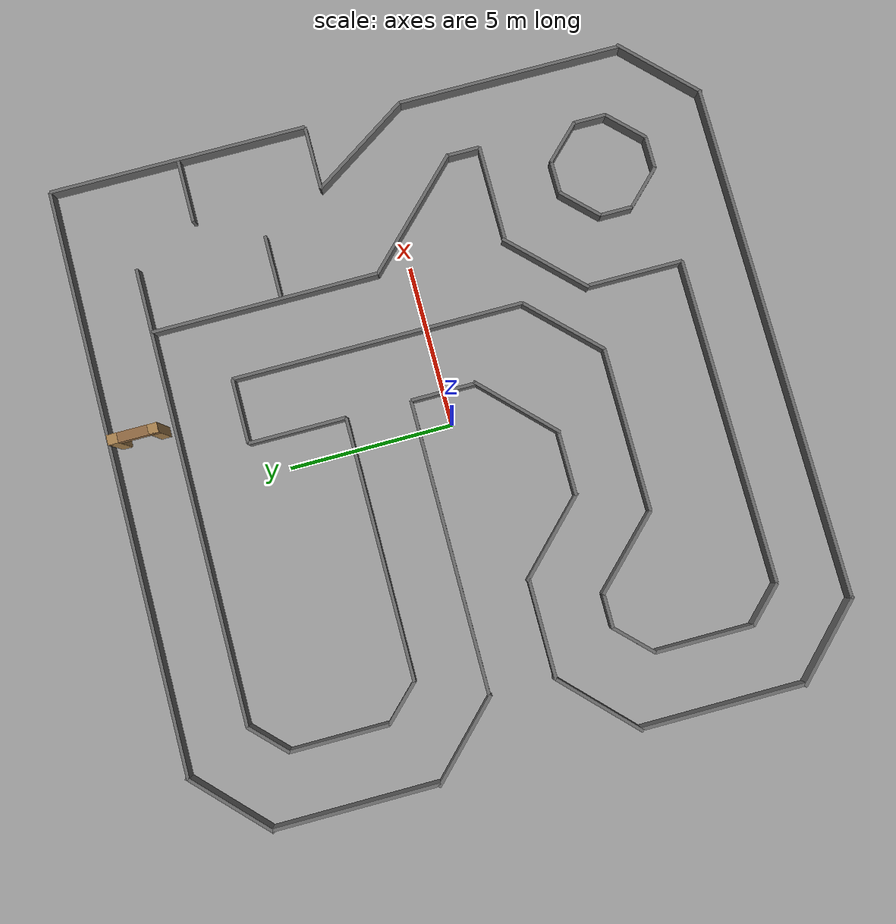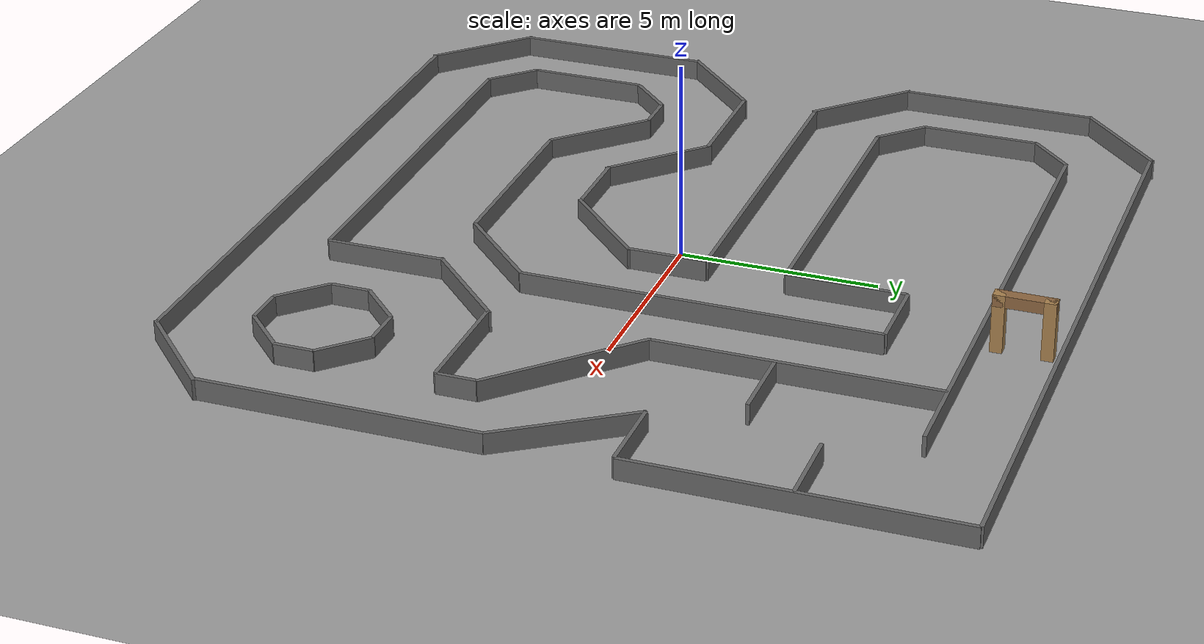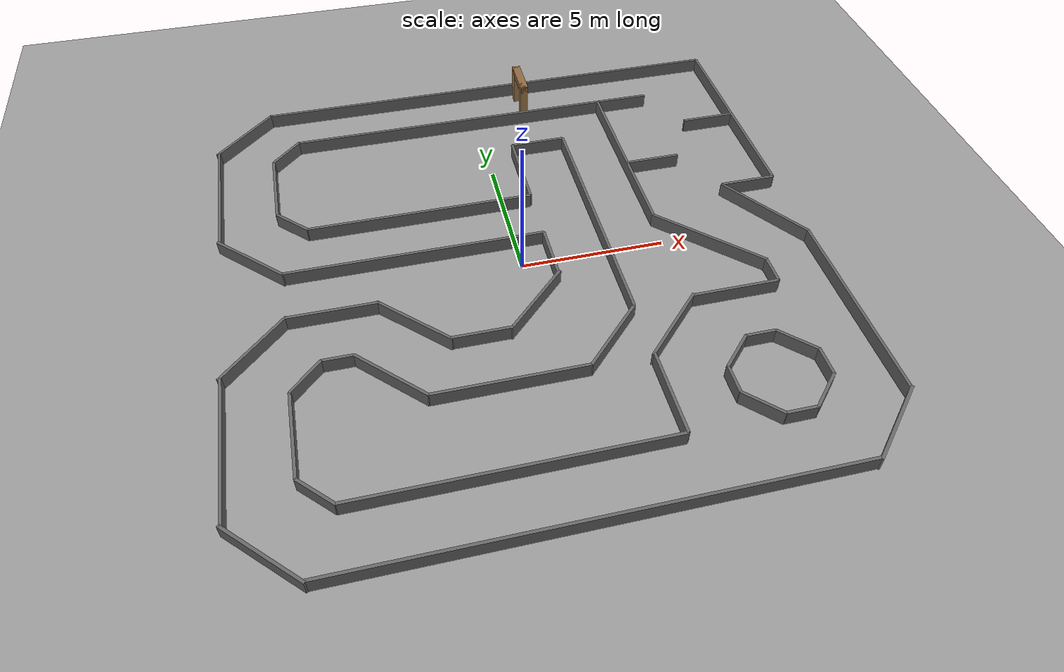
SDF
<sdf version='1.9'>
  <world name='default'>
    <plugin filename="gz-sim-physics-system" name="gz::sim::systems::Physics"/>
    <plugin filename="gz-sim-user-commands-system" name="gz::sim::systems::UserCommands"/>
    <plugin filename="gz-sim-scene-broadcaster-system" name="gz::sim::systems::SceneBroadcaster"/>
    <plugin filename="gz-sim-sensors-system" name="gz::sim::systems::Sensors"/>

    <light name='sun' type='directional'>
      <cast_shadows>1</cast_shadows>
      <pose>0 0 10 0 -0 0</pose>
      <diffuse>0.8 0.8 0.8 1</diffuse>
      <specular>0.2 0.2 0.2 1</specular>
      <attenuation>
        <range>1000</range>
        <constant>0.9</constant>
        <linear>0.01</linear>
        <quadratic>0.001</quadratic>
      </attenuation>
      <direction>-0.5 0.1 -0.9</direction>
    </light>

    <model name='ground_plane'>
      <static>1</static>
      <link name='link'>
        <collision name='collision'>
          <geometry>
            <plane>
              <normal>0 0 1</normal>
              <size>100 100</size>
            </plane>
          </geometry>
          <surface>
            <friction>
              <ode>
                <mu>100000</mu>
                <mu2>100000</mu2>
              </ode>
            </friction>
            <bounce/>
            <contact>
              <ode/>
            </contact>
          </surface>
          <max_contacts>10</max_contacts>
        </collision>
        <visual name='visual'>
          <cast_shadows>0</cast_shadows>
          <geometry>
            <plane>
              <normal>0 0 1</normal>
              <size>100 100</size>
            </plane>
          </geometry>
          <material>
            <ambient>0.6 0.6 0.6 1</ambient>
            <diffuse>0.6 0.6 0.6 1</diffuse>
          </material>
        </visual>
        <self_collide>0</self_collide>
        <kinematic>0</kinematic>
        <gravity>1</gravity>
      </link>
    </model>

    <physics type='ode'>
      <max_step_size>0.01</max_step_size>
      <real_time_factor>1</real_time_factor>
      <real_time_update_rate>100</real_time_update_rate>
      <gravity>0 0 -9.8</gravity>
    </physics>

    <scene>
      <ambient>0.4 0.4 0.4 1</ambient>
      <background>0.7 0.7 0.7 1</background>
      <shadows>1</shadows>
    </scene>

    <model name='unit_box_1'>
      <pose>-9 -2 0 0 0 0.78</pose>
      <link name='link'>
        <inertial>
          <mass>1</mass>
          <inertia>
            <ixx>0</ixx><ixy>0</ixy><ixz>0</ixz><iyy>0</iyy><iyz>0</iyz><izz>0</izz>
          </inertia>
        </inertial>
        <collision name='collision'>
          <geometry><box><size>3 0.1 1</size></box></geometry>
          <max_contacts>10</max_contacts>
          <surface><bounce/><friction><ode/></friction><contact><ode/></contact></surface>
        </collision>
        <visual name='visual'>
          <geometry><box><size>3 0.1 1</size></box></geometry>
          > <material><ambient>0.4 0.4 0.4 1</ambient><diffuse>0.4 0.4 0.4 1</diffuse></material>
        </visual>
        <self_collide>0</self_collide><kinematic>0</kinematic><gravity>1</gravity>
      </link>
      <static>1</static>
    </model>

    <model name='unit_box_2'>
      <pose>-10 -5.5 0 0 0 0</pose>
      <link name='link'>
        <inertial>
          <mass>1</mass>
          <inertia>
            <ixx>0</ixx><ixy>0</ixy><ixz>0</ixz><iyy>0</iyy><iyz>0</iyz><izz>0</izz>
          </inertia>
        </inertial>
        <collision name='collision'>
          <geometry><box><size>0.1 5 1</size></box></geometry>
          <max_contacts>10</max_contacts>
          <surface><bounce/><friction><ode/></friction><contact><ode/></contact></surface>
        </collision>
        <visual name='visual'>
          <geometry><box><size>0.1 5 1</size></box></geometry>
          > <material><ambient>0.4 0.4 0.4 1</ambient><diffuse>0.4 0.4 0.4 1</diffuse></material>
        </visual>
        <self_collide>0</self_collide><kinematic>0</kinematic><gravity>1</gravity>
      </link>
      <static>1</static>
    </model>

    <model name='unit_box_3'>
      <pose>-9 -9 0 0 0 -0.78</pose>
      <link name='link'>
        <inertial>
          <mass>1</mass>
          <inertia>
            <ixx>0</ixx><ixy>0</ixy><ixz>0</ixz><iyy>0</iyy><iyz>0</iyz><izz>0</izz>
          </inertia>
        </inertial>
        <collision name='collision'>
          <geometry><box><size>3 0.1 1</size></box></geometry>
          <max_contacts>10</max_contacts>
          <surface><bounce/><friction><ode/></friction><contact><ode/></contact></surface>
        </collision>
        <visual name='visual'>
          <geometry><box><size>3 0.1 1</size></box></geometry>
          > <material><ambient>0.4 0.4 0.4 1</ambient><diffuse>0.4 0.4 0.4 1</diffuse></material>
        </visual>
        <self_collide>0</self_collide><kinematic>0</kinematic><gravity>1</gravity>
      </link>
      <static>1</static>
    </model>

    <model name='unit_box_4'>
      <pose>0 -10 0 0 0 0</pose>
      <link name='link'>
        <inertial>
          <mass>1</mass>
          <inertia>
            <ixx>0</ixx><ixy>0</ixy><ixz>0</ixz><iyy>0</iyy><iyz>0</iyz><izz>0</izz>
          </inertia>
        </inertial>
        <collision name='collision'>
          <geometry><box><size>16 0.1 1</size></box></geometry>
          <max_contacts>10</max_contacts>
          <surface><bounce/><friction><ode/></friction><contact><ode/></contact></surface>
        </collision>
        <visual name='visual'>
          <geometry><box><size>16 0.1 1</size></box></geometry>
          > <material><ambient>0.4 0.4 0.4 1</ambient><diffuse>0.4 0.4 0.4 1</diffuse></material>
        </visual>
        <self_collide>0</self_collide><kinematic>0</kinematic><gravity>1</gravity>
      </link>
      <static>1</static>
    </model>

    <model name='unit_box_5'>
      <pose>-2 -8 0 0 0 0</pose>
      <link name='link'>
        <inertial>
          <mass>1</mass>
          <inertia>
            <ixx>0</ixx><ixy>0</ixy><ixz>0</ixz><iyy>0</iyy><iyz>0</iyz><izz>0</izz>
          </inertia>
        </inertial>
        <collision name='collision'>
          <geometry><box><size>10 0.1 1</size></box></geometry>
          <max_contacts>10</max_contacts>
          <surface><bounce/><friction><ode/></friction><contact><ode/></contact></surface>
        </collision>
        <visual name='visual'>
          <geometry><box><size>10 0.1 1</size></box></geometry>
          > <material><ambient>0.4 0.4 0.4 1</ambient><diffuse>0.4 0.4 0.4 1</diffuse></material>
        </visual>
        <self_collide>0</self_collide><kinematic>0</kinematic><gravity>1</gravity>
      </link>
      <static>1</static>
    </model>

    <model name='unit_box_6'>
      <pose>9 -9 0 0 0 0.78</pose>
      <link name='link'>
        <inertial>
          <mass>1</mass>
          <inertia>
            <ixx>0</ixx><ixy>0</ixy><ixz>0</ixz><iyy>0</iyy><iyz>0</iyz><izz>0</izz>
          </inertia>
        </inertial>
        <collision name='collision'>
          <geometry><box><size>3 0.1 1</size></box></geometry>
          <max_contacts>10</max_contacts>
          <surface><bounce/><friction><ode/></friction><contact><ode/></contact></surface>
        </collision>
        <visual name='visual'>
          <geometry><box><size>3 0.1 1</size></box></geometry>
          > <material><ambient>0.4 0.4 0.4 1</ambient><diffuse>0.4 0.4 0.4 1</diffuse></material>
        </visual>
        <self_collide>0</self_collide><kinematic>0</kinematic><gravity>1</gravity>
      </link>
      <static>1</static>
    </model>

    <model name='unit_box_7'>
      <pose>3 -6.5 0 0 0 0</pose>
      <link name='link'>
        <inertial>
          <mass>1</mass>
          <inertia>
            <ixx>0</ixx><ixy>0</ixy><ixz>0</ixz><iyy>0</iyy><iyz>0</iyz><izz>0</izz>
          </inertia>
        </inertial>
        <collision name='collision'>
          <geometry><box><size>0.1 3 1</size></box></geometry>
          <max_contacts>10</max_contacts>
          <surface><bounce/><friction><ode/></friction><contact><ode/></contact></surface>
        </collision>
        <visual name='visual'>
          <geometry><box><size>0.1 3 1</size></box></geometry>
          > <material><ambient>0.4 0.4 0.4 1</ambient><diffuse>0.4 0.4 0.4 1</diffuse></material>
        </visual>
        <self_collide>0</self_collide><kinematic>0</kinematic><gravity>1</gravity>
      </link>
      <static>1</static>
    </model>

    <model name='unit_box_8'>
      <pose>5 -6.5 0 0 0 0</pose>
      <link name='link'>
        <inertial>
          <mass>1</mass>
          <inertia>
            <ixx>0</ixx><ixy>0</ixy><ixz>0</ixz><iyy>0</iyy><iyz>0</iyz><izz>0</izz>
          </inertia>
        </inertial>
        <collision name='collision'>
          <geometry><box><size>0.1 1 1</size></box></geometry>
          <max_contacts>10</max_contacts>
          <surface><bounce/><friction><ode/></friction><contact><ode/></contact></surface>
        </collision>
        <visual name='visual'>
          <geometry><box><size>0.1 1 1</size></box></geometry>
          > <material><ambient>0.4 0.4 0.4 1</ambient><diffuse>0.4 0.4 0.4 1</diffuse></material>
        </visual>
        <self_collide>0</self_collide><kinematic>0</kinematic><gravity>1</gravity>
      </link>
      <static>1</static>
    </model>

    <model name='unit_box_9'>
      <pose>8 -6.5 0 0 0 0</pose>
      <link name='link'>
        <inertial>
          <mass>1</mass>
          <inertia>
            <ixx>0</ixx><ixy>0</ixy><ixz>0</ixz><iyy>0</iyy><iyz>0</iyz><izz>0</izz>
          </inertia>
        </inertial>
        <collision name='collision'>
          <geometry><box><size>0.1 1 1</size></box></geometry>
          <max_contacts>10</max_contacts>
          <surface><bounce/><friction><ode/></friction><contact><ode/></contact></surface>
        </collision>
        <visual name='visual'>
          <geometry><box><size>0.1 1 1</size></box></geometry>
          > <material><ambient>0.4 0.4 0.4 1</ambient><diffuse>0.4 0.4 0.4 1</diffuse></material>
        </visual>
        <self_collide>0</self_collide><kinematic>0</kinematic><gravity>1</gravity>
      </link>
      <static>1</static>
    </model>

    <model name='unit_box_10'>
      <pose>7.5 -7.5 0 0 0 -0.78</pose>
      <link name='link'>
        <inertial>
          <mass>1</mass>
          <inertia>
            <ixx>0</ixx><ixy>0</ixy><ixz>0</ixz><iyy>0</iyy><iyz>0</iyz><izz>0</izz>
          </inertia>
        </inertial>
        <collision name='collision'>
          <geometry><box><size>0.1 1.45 1</size></box></geometry>
          <max_contacts>10</max_contacts>
          <surface><bounce/><friction><ode/></friction><contact><ode/></contact></surface>
        </collision>
        <visual name='visual'>
          <geometry><box><size>0.1 1.45 1</size></box></geometry>
          > <material><ambient>0.4 0.4 0.4 1</ambient><diffuse>0.4 0.4 0.4 1</diffuse></material>
        </visual>
        <self_collide>0</self_collide><kinematic>0</kinematic><gravity>1</gravity>
      </link>
      <static>1</static>
    </model>

    <model name='unit_box_11'>
      <pose>6.5 -8 0 0 0 0</pose>
      <link name='link'>
        <inertial>
          <mass>1</mass>
          <inertia>
            <ixx>0</ixx><ixy>0</ixy><ixz>0</ixz><iyy>0</iyy><iyz>0</iyz><izz>0</izz>
          </inertia>
        </inertial>
        <collision name='collision'>
          <geometry><box><size>1 0.1 1</size></box></geometry>
          <max_contacts>10</max_contacts>
          <surface><bounce/><friction><ode/></friction><contact><ode/></contact></surface>
        </collision>
        <visual name='visual'>
          <geometry><box><size>1 0.1 1</size></box></geometry>
          > <material><ambient>0.4 0.4 0.4 1</ambient><diffuse>0.4 0.4 0.4 1</diffuse></material>
        </visual>
        <self_collide>0</self_collide><kinematic>0</kinematic><gravity>1</gravity>
      </link>
      <static>1</static>
    </model>

    <model name='unit_box_12'>
      <pose>5.5 -7.5 0 0 0 0.78</pose>
      <link name='link'>
        <inertial>
          <mass>1</mass>
          <inertia>
            <ixx>0</ixx><ixy>0</ixy><ixz>0</ixz><iyy>0</iyy><iyz>0</iyz><izz>0</izz>
          </inertia>
        </inertial>
        <collision name='collision'>
          <geometry><box><size>0.1 1.45 1</size></box></geometry>
          <max_contacts>10</max_contacts>
          <surface><bounce/><friction><ode/></friction><contact><ode/></contact></surface>
        </collision>
        <visual name='visual'>
          <geometry><box><size>0.1 1.45 1</size></box></geometry>
          > <material><ambient>0.4 0.4 0.4 1</ambient><diffuse>0.4 0.4 0.4 1</diffuse></material>
        </visual>
        <self_collide>0</self_collide><kinematic>0</kinematic><gravity>1</gravity>
      </link>
      <static>1</static>
    </model>

    <model name='unit_box_13'>
      <pose>5.5 -5.5 0 0 0 -0.78</pose>
      <link name='link'>
        <inertial>
          <mass>1</mass>
          <inertia>
            <ixx>0</ixx><ixy>0</ixy><ixz>0</ixz><iyy>0</iyy><iyz>0</iyz><izz>0</izz>
          </inertia>
        </inertial>
        <collision name='collision'>
          <geometry><box><size>0.1 1.45 1</size></box></geometry>
          <max_contacts>10</max_contacts>
          <surface><bounce/><friction><ode/></friction><contact><ode/></contact></surface>
        </collision>
        <visual name='visual'>
          <geometry><box><size>0.1 1.45 1</size></box></geometry>
          > <material><ambient>0.4 0.4 0.4 1</ambient><diffuse>0.4 0.4 0.4 1</diffuse></material>
        </visual>
        <self_collide>0</self_collide><kinematic>0</kinematic><gravity>1</gravity>
      </link>
      <static>1</static>
    </model>

    <model name='unit_box_14'>
      <pose>7.5 -5.5 0 0 0 0.78</pose>
      <link name='link'>
        <inertial>
          <mass>1</mass>
          <inertia>
            <ixx>0</ixx><ixy>0</ixy><ixz>0</ixz><iyy>0</iyy><iyz>0</iyz><izz>0</izz>
          </inertia>
        </inertial>
        <collision name='collision'>
          <geometry><box><size>0.1 1.45 1</size></box></geometry>
          <max_contacts>10</max_contacts>
          <surface><bounce/><friction><ode/></friction><contact><ode/></contact></surface>
        </collision>
        <visual name='visual'>
          <geometry><box><size>0.1 1.45 1</size></box></geometry>
          > <material><ambient>0.4 0.4 0.4 1</ambient><diffuse>0.4 0.4 0.4 1</diffuse></material>
        </visual>
        <self_collide>0</self_collide><kinematic>0</kinematic><gravity>1</gravity>
      </link>
      <static>1</static>
    </model>

    <model name='unit_box_15'>
      <pose>6.5 -5 0 0 0 0</pose>
      <link name='link'>
        <inertial>
          <mass>1</mass>
          <inertia>
            <ixx>0</ixx><ixy>0</ixy><ixz>0</ixz><iyy>0</iyy><iyz>0</iyz><izz>0</izz>
          </inertia>
        </inertial>
        <collision name='collision'>
          <geometry><box><size>1 0.1 1</size></box></geometry>
          <max_contacts>10</max_contacts>
          <surface><bounce/><friction><ode/></friction><contact><ode/></contact></surface>
        </collision>
        <visual name='visual'>
          <geometry><box><size>1 0.1 1</size></box></geometry>
          > <material><ambient>0.4 0.4 0.4 1</ambient><diffuse>0.4 0.4 0.4 1</diffuse></material>
        </visual>
        <self_collide>0</self_collide><kinematic>0</kinematic><gravity>1</gravity>
      </link>
      <static>1</static>
    </model>

    <model name='unit_box_16'>
      <pose>4 -4 0 0 0 -0.78</pose>
      <link name='link'>
        <inertial>
          <mass>1</mass>
          <inertia>
            <ixx>0</ixx><ixy>0</ixy><ixz>0</ixz><iyy>0</iyy><iyz>0</iyz><izz>0</izz>
          </inertia>
        </inertial>
        <collision name='collision'>
          <geometry><box><size>0.1 3 1</size></box></geometry>
          <max_contacts>10</max_contacts>
          <surface><bounce/><friction><ode/></friction><contact><ode/></contact></surface>
        </collision>
        <visual name='visual'>
          <geometry><box><size>0.1 3 1</size></box></geometry>
          > <material><ambient>0.4 0.4 0.4 1</ambient><diffuse>0.4 0.4 0.4 1</diffuse></material>
        </visual>
        <self_collide>0</self_collide><kinematic>0</kinematic><gravity>1</gravity>
      </link>
      <static>1</static>
    </model>

    <model name='unit_box_17'>
      <pose>10 -4.5 0 0 0 0</pose>
      <link name='link'>
        <inertial>
          <mass>1</mass>
          <inertia>
            <ixx>0</ixx><ixy>0</ixy><ixz>0</ixz><iyy>0</iyy><iyz>0</iyz><izz>0</izz>
          </inertia>
        </inertial>
        <collision name='collision'>
          <geometry><box><size>0.1 7 1</size></box></geometry>
          <max_contacts>10</max_contacts>
          <surface><bounce/><friction><ode/></friction><contact><ode/></contact></surface>
        </collision>
        <visual name='visual'>
          <geometry><box><size>0.1 7 1</size></box></geometry>
          > <material><ambient>0.4 0.4 0.4 1</ambient><diffuse>0.4 0.4 0.4 1</diffuse></material>
        </visual>
        <self_collide>0</self_collide><kinematic>0</kinematic><gravity>1</gravity>
      </link>
      <static>1</static>
    </model>

    <model name='unit_box_18'>
      <pose>6.5 -3 0 0 0 0</pose>
      <link name='link'>
        <inertial>
          <mass>1</mass>
          <inertia>
            <ixx>0</ixx><ixy>0</ixy><ixz>0</ixz><iyy>0</iyy><iyz>0</iyz><izz>0</izz>
          </inertia>
        </inertial>
        <collision name='collision'>
          <geometry><box><size>3 0.1 1</size></box></geometry>
          <max_contacts>10</max_contacts>
          <surface><bounce/><friction><ode/></friction><contact><ode/></contact></surface>
        </collision>
        <visual name='visual'>
          <geometry><box><size>3 0.1 1</size></box></geometry>
          > <material><ambient>0.4 0.4 0.4 1</ambient><diffuse>0.4 0.4 0.4 1</diffuse></material>
        </visual>
        <self_collide>0</self_collide><kinematic>0</kinematic><gravity>1</gravity>
      </link>
      <static>1</static>
    </model>

    <model name='unit_box_19'>
      <pose>1 10 0 0 0 0</pose>
      <link name='link'>
        <inertial>
          <mass>1</mass>
          <inertia>
            <ixx>0</ixx><ixy>0</ixy><ixz>0</ixz><iyy>0</iyy><iyz>0</iyz><izz>0</izz>
          </inertia>
        </inertial>
        <collision name='collision'>
          <geometry><box><size>18 0.1 1</size></box></geometry>
          <max_contacts>10</max_contacts>
          <surface><bounce/><friction><ode/></friction><contact><ode/></contact></surface>
        </collision>
        <visual name='visual'>
          <geometry><box><size>18 0.1 1</size></box></geometry>
          > <material><ambient>0.4 0.4 0.4 1</ambient><diffuse>0.4 0.4 0.4 1</diffuse></material>
        </visual>
        <self_collide>0</self_collide><kinematic>0</kinematic><gravity>1</gravity>
      </link>
      <static>1</static>
    </model>

    <model name='unit_box_20'>
      <pose>10 6 0 0 0 0</pose>
      <link name='link'>
        <inertial>
          <mass>1</mass>
          <inertia>
            <ixx>0</ixx><ixy>0</ixy><ixz>0</ixz><iyy>0</iyy><iyz>0</iyz><izz>0</izz>
          </inertia>
        </inertial>
        <collision name='collision'>
          <geometry><box><size>0.1 8 1</size></box></geometry>
          <max_contacts>10</max_contacts>
          <surface><bounce/><friction><ode/></friction><contact><ode/></contact></surface>
        </collision>
        <visual name='visual'>
          <geometry><box><size>0.1 8 1</size></box></geometry>
          > <material><ambient>0.4 0.4 0.4 1</ambient><diffuse>0.4 0.4 0.4 1</diffuse></material>
        </visual>
        <self_collide>0</self_collide><kinematic>0</kinematic><gravity>1</gravity>
      </link>
      <static>1</static>
    </model>

    <model name='unit_box_21'>
      <pose>5 4.5 0 0 0 0</pose>
      <link name='link'>
        <inertial>
          <mass>1</mass>
          <inertia>
            <ixx>0</ixx><ixy>0</ixy><ixz>0</ixz><iyy>0</iyy><iyz>0</iyz><izz>0</izz>
          </inertia>
        </inertial>
        <collision name='collision'>
          <geometry><box><size>0.1 7 1</size></box></geometry>
          <max_contacts>10</max_contacts>
          <surface><bounce/><friction><ode/></friction><contact><ode/></contact></surface>
        </collision>
        <visual name='visual'>
          <geometry><box><size>0.1 7 1</size></box></geometry>
          > <material><ambient>0.4 0.4 0.4 1</ambient><diffuse>0.4 0.4 0.4 1</diffuse></material>
        </visual>
        <self_collide>0</self_collide><kinematic>0</kinematic><gravity>1</gravity>
      </link>
      <static>1</static>
    </model>

    <model name='unit_box_22'>
      <pose>0 8 0 0 0 0</pose>
      <link name='link'>
        <inertial>
          <mass>1</mass>
          <inertia>
            <ixx>0</ixx><ixy>0</ixy><ixz>0</ixz><iyy>0</iyy><iyz>0</iyz><izz>0</izz>
          </inertia>
        </inertial>
        <collision name='collision'>
          <geometry><box><size>14 0.1 1</size></box></geometry>
          <max_contacts>10</max_contacts>
          <surface><bounce/><friction><ode/></friction><contact><ode/></contact></surface>
        </collision>
        <visual name='visual'>
          <geometry><box><size>14 0.1 1</size></box></geometry>
          > <material><ambient>0.4 0.4 0.4 1</ambient><diffuse>0.4 0.4 0.4 1</diffuse></material>
        </visual>
        <self_collide>0</self_collide><kinematic>0</kinematic><gravity>1</gravity>
      </link>
      <static>1</static>
    </model>

    <model name='unit_box_23'>
      <pose>9 2 0 0 0 0</pose>
      <link name='link'>
        <inertial>
          <mass>1</mass>
          <inertia>
            <ixx>0</ixx><ixy>0</ixy><ixz>0</ixz><iyy>0</iyy><iyz>0</iyz><izz>0</izz>
          </inertia>
        </inertial>
        <collision name='collision'>
          <geometry><box><size>2 0.1 1</size></box></geometry>
          <max_contacts>10</max_contacts>
          <surface><bounce/><friction><ode/></friction><contact><ode/></contact></surface>
        </collision>
        <visual name='visual'>
          <geometry><box><size>2 0.1 1</size></box></geometry>
          > <material><ambient>0.4 0.4 0.4 1</ambient><diffuse>0.4 0.4 0.4 1</diffuse></material>
        </visual>
        <self_collide>0</self_collide><kinematic>0</kinematic><gravity>1</gravity>
      </link>
      <static>1</static>
    </model>

    <model name='unit_box_24'>
      <pose>9 6 0 0 0 0</pose>
      <link name='link'>
        <inertial>
          <mass>1</mass>
          <inertia>
            <ixx>0</ixx><ixy>0</ixy><ixz>0</ixz><iyy>0</iyy><iyz>0</iyz><izz>0</izz>
          </inertia>
        </inertial>
        <collision name='collision'>
          <geometry><box><size>2 0.1 1</size></box></geometry>
          <max_contacts>10</max_contacts>
          <surface><bounce/><friction><ode/></friction><contact><ode/></contact></surface>
        </collision>
        <visual name='visual'>
          <geometry><box><size>2 0.1 1</size></box></geometry>
          > <material><ambient>0.4 0.4 0.4 1</ambient><diffuse>0.4 0.4 0.4 1</diffuse></material>
        </visual>
        <self_collide>0</self_collide><kinematic>0</kinematic><gravity>1</gravity>
      </link>
      <static>1</static>
    </model>

    <model name='unit_box_25'>
      <pose>6 4 0 0 0 0</pose>
      <link name='link'>
        <inertial>
          <mass>1</mass>
          <inertia>
            <ixx>0</ixx><ixy>0</ixy><ixz>0</ixz><iyy>0</iyy><iyz>0</iyz><izz>0</izz>
          </inertia>
        </inertial>
        <collision name='collision'>
          <geometry><box><size>2 0.1 1</size></box></geometry>
          <max_contacts>10</max_contacts>
          <surface><bounce/><friction><ode/></friction><contact><ode/></contact></surface>
        </collision>
        <visual name='visual'>
          <geometry><box><size>2 0.1 1</size></box></geometry>
          > <material><ambient>0.4 0.4 0.4 1</ambient><diffuse>0.4 0.4 0.4 1</diffuse></material>
        </visual>
        <self_collide>0</self_collide><kinematic>0</kinematic><gravity>1</gravity>
      </link>
      <static>1</static>
    </model>

    <model name='unit_box_26'>
      <pose>9 0.5 0 0 0 -0.984</pose>
      <link name='link'>
        <inertial>
          <mass>1</mass>
          <inertia>
            <ixx>0</ixx><ixy>0</ixy><ixz>0</ixz><iyy>0</iyy><iyz>0</iyz><izz>0</izz>
          </inertia>
        </inertial>
        <collision name='collision'>
          <geometry><box><size>3.65 0.1 1</size></box></geometry>
          <max_contacts>10</max_contacts>
          <surface><bounce/><friction><ode/></friction><contact><ode/></contact></surface>
        </collision>
        <visual name='visual'>
          <geometry><box><size>3.65 0.1 1</size></box></geometry>
          > <material><ambient>0.4 0.4 0.4 1</ambient><diffuse>0.4 0.4 0.4 1</diffuse></material>
        </visual>
        <self_collide>0</self_collide><kinematic>0</kinematic><gravity>1</gravity>
      </link>
      <static>1</static>
    </model>

    <model name='unit_box_27'>
      <pose>6.5 -0.5 0 0 0 -0.78</pose>
      <link name='link'>
        <inertial>
          <mass>1</mass>
          <inertia>
            <ixx>0</ixx><ixy>0</ixy><ixz>0</ixz><iyy>0</iyy><iyz>0</iyz><izz>0</izz>
          </inertia>
        </inertial>
        <collision name='collision'>
          <geometry><box><size>4.3 0.1 1</size></box></geometry>
          <max_contacts>10</max_contacts>
          <surface><bounce/><friction><ode/></friction><contact><ode/></contact></surface>
        </collision>
        <visual name='visual'>
          <geometry><box><size>4.3 0.1 1</size></box></geometry>
          > <material><ambient>0.4 0.4 0.4 1</ambient><diffuse>0.4 0.4 0.4 1</diffuse></material>
        </visual>
        <self_collide>0</self_collide><kinematic>0</kinematic><gravity>1</gravity>
      </link>
      <static>1</static>
    </model>

    <model name='unit_box_28'>
      <pose>8 -2.5 0 0 0 0</pose>
      <link name='link'>
        <inertial>
          <mass>1</mass>
          <inertia>
            <ixx>0</ixx><ixy>0</ixy><ixz>0</ixz><iyy>0</iyy><iyz>0</iyz><izz>0</izz>
          </inertia>
        </inertial>
        <collision name='collision'>
          <geometry><box><size>0.1 1 1</size></box></geometry>
          <max_contacts>10</max_contacts>
          <surface><bounce/><friction><ode/></friction><contact><ode/></contact></surface>
        </collision>
        <visual name='visual'>
          <geometry><box><size>0.1 1 1</size></box></geometry>
          > <material><ambient>0.4 0.4 0.4 1</ambient><diffuse>0.4 0.4 0.4 1</diffuse></material>
        </visual>
        <self_collide>0</self_collide><kinematic>0</kinematic><gravity>1</gravity>
      </link>
      <static>1</static>
    </model>

    <model name='unit_box_29'>
      <pose>-9 9 0 0 0 0.78</pose>
      <link name='link'>
        <inertial>
          <mass>1</mass>
          <inertia>
            <ixx>0</ixx><ixy>0</ixy><ixz>0</ixz><iyy>0</iyy><iyz>0</iyz><izz>0</izz>
          </inertia>
        </inertial>
        <collision name='collision'>
          <geometry><box><size>3 0.1 1</size></box></geometry>
          <max_contacts>10</max_contacts>
          <surface><bounce/><friction><ode/></friction><contact><ode/></contact></surface>
        </collision>
        <visual name='visual'>
          <geometry><box><size>3 0.1 1</size></box></geometry>
          > <material><ambient>0.4 0.4 0.4 1</ambient><diffuse>0.4 0.4 0.4 1</diffuse></material>
        </visual>
        <self_collide>0</self_collide><kinematic>0</kinematic><gravity>1</gravity>
      </link>
      <static>1</static>
    </model>

    <model name='unit_box_30'>
      <pose>-10 5.5 0 0 0 0</pose>
      <link name='link'>
        <inertial>
          <mass>1</mass>
          <inertia>
            <ixx>0</ixx><ixy>0</ixy><ixz>0</ixz><iyy>0</iyy><iyz>0</iyz><izz>0</izz>
          </inertia>
        </inertial>
        <collision name='collision'>
          <geometry><box><size>0.1 5 1</size></box></geometry>
          <max_contacts>10</max_contacts>
          <surface><bounce/><friction><ode/></friction><contact><ode/></contact></surface>
        </collision>
        <visual name='visual'>
          <geometry><box><size>0.1 5 1</size></box></geometry>
          > <material><ambient>0.4 0.4 0.4 1</ambient><diffuse>0.4 0.4 0.4 1</diffuse></material>
        </visual>
        <self_collide>0</self_collide><kinematic>0</kinematic><gravity>1</gravity>
      </link>
      <static>1</static>
    </model>

    <model name='unit_box_31'>
      <pose>-9 2 0 0 0 -0.78</pose>
      <link name='link'>
        <inertial>
          <mass>1</mass>
          <inertia>
            <ixx>0</ixx><ixy>0</ixy><ixz>0</ixz><iyy>0</iyy><iyz>0</iyz><izz>0</izz>
          </inertia>
        </inertial>
        <collision name='collision'>
          <geometry><box><size>3 0.1 1</size></box></geometry>
          <max_contacts>10</max_contacts>
          <surface><bounce/><friction><ode/></friction><contact><ode/></contact></surface>
        </collision>
        <visual name='visual'>
          <geometry><box><size>3 0.1 1</size></box></geometry>
          > <material><ambient>0.4 0.4 0.4 1</ambient><diffuse>0.4 0.4 0.4 1</diffuse></material>
        </visual>
        <self_collide>0</self_collide><kinematic>0</kinematic><gravity>1</gravity>
      </link>
      <static>1</static>
    </model>

    <model name='unit_box_32'>
      <pose>-3 3 0 0 0 0</pose>
      <link name='link'>
        <inertial>
          <mass>1</mass>
          <inertia>
            <ixx>0</ixx><ixy>0</ixy><ixz>0</ixz><iyy>0</iyy><iyz>0</iyz><izz>0</izz>
          </inertia>
        </inertial>
        <collision name='collision'>
          <geometry><box><size>8 0.1 1</size></box></geometry>
          <max_contacts>10</max_contacts>
          <surface><bounce/><friction><ode/></friction><contact><ode/></contact></surface>
        </collision>
        <visual name='visual'>
          <geometry><box><size>8 0.1 1</size></box></geometry>
          > <material><ambient>0.4 0.4 0.4 1</ambient><diffuse>0.4 0.4 0.4 1</diffuse></material>
        </visual>
        <self_collide>0</self_collide><kinematic>0</kinematic><gravity>1</gravity>
      </link>
      <static>1</static>
    </model>

    <model name='unit_box_33'>
      <pose>-8 5.5 0 0 0 0</pose>
      <link name='link'>
        <inertial>
          <mass>1</mass>
          <inertia>
            <ixx>0</ixx><ixy>0</ixy><ixz>0</ixz><iyy>0</iyy><iyz>0</iyz><izz>0</izz>
          </inertia>
        </inertial>
        <collision name='collision'>
          <geometry><box><size>0.1 3 1</size></box></geometry>
          <max_contacts>10</max_contacts>
          <surface><bounce/><friction><ode/></friction><contact><ode/></contact></surface>
        </collision>
        <visual name='visual'>
          <geometry><box><size>0.1 3 1</size></box></geometry>
          > <material><ambient>0.4 0.4 0.4 1</ambient><diffuse>0.4 0.4 0.4 1</diffuse></material>
        </visual>
        <self_collide>0</self_collide><kinematic>0</kinematic><gravity>1</gravity>
      </link>
      <static>1</static>
    </model>

    <model name='unit_box_34'>
      <pose>-7.5 3.5 0 0 0 0.78</pose>
      <link name='link'>
        <inertial>
          <mass>1</mass>
          <inertia>
            <ixx>0</ixx><ixy>0</ixy><ixz>0</ixz><iyy>0</iyy><iyz>0</iyz><izz>0</izz>
          </inertia>
        </inertial>
        <collision name='collision'>
          <geometry><box><size>0.1 1.45 1</size></box></geometry>
          <max_contacts>10</max_contacts>
          <surface><bounce/><friction><ode/></friction><contact><ode/></contact></surface>
        </collision>
        <visual name='visual'>
          <geometry><box><size>0.1 1.45 1</size></box></geometry>
          > <material><ambient>0.4 0.4 0.4 1</ambient><diffuse>0.4 0.4 0.4 1</diffuse></material>
        </visual>
        <self_collide>0</self_collide><kinematic>0</kinematic><gravity>1</gravity>
      </link>
      <static>1</static>
    </model>

    <model name='unit_box_35'>
      <pose>-7.5 7.5 0 0 0 -0.78</pose>
      <link name='link'>
        <inertial>
          <mass>1</mass>
          <inertia>
            <ixx>0</ixx><ixy>0</ixy><ixz>0</ixz><iyy>0</iyy><iyz>0</iyz><izz>0</izz>
          </inertia>
        </inertial>
        <collision name='collision'>
          <geometry><box><size>0.1 1.45 1</size></box></geometry>
          <max_contacts>10</max_contacts>
          <surface><bounce/><friction><ode/></friction><contact><ode/></contact></surface>
        </collision>
        <visual name='visual'>
          <geometry><box><size>0.1 1.45 1</size></box></geometry>
          > <material><ambient>0.4 0.4 0.4 1</ambient><diffuse>0.4 0.4 0.4 1</diffuse></material>
        </visual>
        <self_collide>0</self_collide><kinematic>0</kinematic><gravity>1</gravity>
      </link>
      <static>1</static>
    </model>

    <model name='unit_box_36'>
      <pose>1 4.5 0 0 0 0</pose>
      <link name='link'>
        <inertial>
          <mass>1</mass>
          <inertia>
            <ixx>0</ixx><ixy>0</ixy><ixz>0</ixz><iyy>0</iyy><iyz>0</iyz><izz>0</izz>
          </inertia>
        </inertial>
        <collision name='collision'>
          <geometry><box><size>0.1 3 1</size></box></geometry>
          <max_contacts>10</max_contacts>
          <surface><bounce/><friction><ode/></friction><contact><ode/></contact></surface>
        </collision>
        <visual name='visual'>
          <geometry><box><size>0.1 3 1</size></box></geometry>
          > <material><ambient>0.4 0.4 0.4 1</ambient><diffuse>0.4 0.4 0.4 1</diffuse></material>
        </visual>
        <self_collide>0</self_collide><kinematic>0</kinematic><gravity>1</gravity>
      </link>
      <static>1</static>
    </model>

    <model name='unit_box_37'>
      <pose>3 1.5 0 0 0 0</pose>
      <link name='link'>
        <inertial>
          <mass>1</mass>
          <inertia>
            <ixx>0</ixx><ixy>0</ixy><ixz>0</ixz><iyy>0</iyy><iyz>0</iyz><izz>0</izz>
          </inertia>
        </inertial>
        <collision name='collision'>
          <geometry><box><size>0.1 9 1</size></box></geometry>
          <max_contacts>10</max_contacts>
          <surface><bounce/><friction><ode/></friction><contact><ode/></contact></surface>
        </collision>
        <visual name='visual'>
          <geometry><box><size>0.1 9 1</size></box></geometry>
          > <material><ambient>0.4 0.4 0.4 1</ambient><diffuse>0.4 0.4 0.4 1</diffuse></material>
        </visual>
        <self_collide>0</self_collide><kinematic>0</kinematic><gravity>1</gravity>
      </link>
      <static>1</static>
    </model>

    <model name='unit_box_38'>
      <pose>-3.5 1 0 0 0 0</pose>
      <link name='link'>
        <inertial>
          <mass>1</mass>
          <inertia>
            <ixx>0</ixx><ixy>0</ixy><ixz>0</ixz><iyy>0</iyy><iyz>0</iyz><izz>0</izz>
          </inertia>
        </inertial>
        <collision name='collision'>
          <geometry><box><size>9 0.1 1</size></box></geometry>
          <max_contacts>10</max_contacts>
          <surface><bounce/><friction><ode/></friction><contact><ode/></contact></surface>
        </collision>
        <visual name='visual'>
          <geometry><box><size>9 0.1 1</size></box></geometry>
          > <material><ambient>0.4 0.4 0.4 1</ambient><diffuse>0.4 0.4 0.4 1</diffuse></material>
        </visual>
        <self_collide>0</self_collide><kinematic>0</kinematic><gravity>1</gravity>
      </link>
      <static>1</static>
    </model>

    <model name='unit_box_39'>
      <pose>-8 -5.5 0 0 0 0</pose>
      <link name='link'>
        <inertial>
          <mass>1</mass>
          <inertia>
            <ixx>0</ixx><ixy>0</ixy><ixz>0</ixz><iyy>0</iyy><iyz>0</iyz><izz>0</izz>
          </inertia>
        </inertial>
        <collision name='collision'>
          <geometry><box><size>0.1 3 1</size></box></geometry>
          <max_contacts>10</max_contacts>
          <surface><bounce/><friction><ode/></friction><contact><ode/></contact></surface>
        </collision>
        <visual name='visual'>
          <geometry><box><size>0.1 3 1</size></box></geometry>
          > <material><ambient>0.4 0.4 0.4 1</ambient><diffuse>0.4 0.4 0.4 1</diffuse></material>
        </visual>
        <self_collide>0</self_collide><kinematic>0</kinematic><gravity>1</gravity>
      </link>
      <static>1</static>
    </model>

    <model name='unit_box_40'>
      <pose>-7.5 -7.5 0 0 0 0.78</pose>
      <link name='link'>
        <inertial>
          <mass>1</mass>
          <inertia>
            <ixx>0</ixx><ixy>0</ixy><ixz>0</ixz><iyy>0</iyy><iyz>0</iyz><izz>0</izz>
          </inertia>
        </inertial>
        <collision name='collision'>
          <geometry><box><size>0.1 1.45 1</size></box></geometry>
          <max_contacts>10</max_contacts>
          <surface><bounce/><friction><ode/></friction><contact><ode/></contact></surface>
        </collision>
        <visual name='visual'>
          <geometry><box><size>0.1 1.45 1</size></box></geometry>
          > <material><ambient>0.4 0.4 0.4 1</ambient><diffuse>0.4 0.4 0.4 1</diffuse></material>
        </visual>
        <self_collide>0</self_collide><kinematic>0</kinematic><gravity>1</gravity>
      </link>
      <static>1</static>
    </model>

    <model name='unit_box_41'>
      <pose>-7.5 -3.5 0 0 0 -0.78</pose>
      <link name='link'>
        <inertial>
          <mass>1</mass>
          <inertia>
            <ixx>0</ixx><ixy>0</ixy><ixz>0</ixz><iyy>0</iyy><iyz>0</iyz><izz>0</izz>
          </inertia>
        </inertial>
        <collision name='collision'>
          <geometry><box><size>0.1 1.45 1</size></box></geometry>
          <max_contacts>10</max_contacts>
          <surface><bounce/><friction><ode/></friction><contact><ode/></contact></surface>
        </collision>
        <visual name='visual'>
          <geometry><box><size>0.1 1.45 1</size></box></geometry>
          > <material><ambient>0.4 0.4 0.4 1</ambient><diffuse>0.4 0.4 0.4 1</diffuse></material>
        </visual>
        <self_collide>0</self_collide><kinematic>0</kinematic><gravity>1</gravity>
      </link>
      <static>1</static>
    </model>

    <model name='unit_box_42'>
      <pose>-6.5 -1 0 0 0 0</pose>
      <link name='link'>
        <inertial>
          <mass>1</mass>
          <inertia>
            <ixx>0</ixx><ixy>0</ixy><ixz>0</ixz><iyy>0</iyy><iyz>0</iyz><izz>0</izz>
          </inertia>
        </inertial>
        <collision name='collision'>
          <geometry><box><size>3 0.1 1</size></box></geometry>
          <max_contacts>10</max_contacts>
          <surface><bounce/><friction><ode/></friction><contact><ode/></contact></surface>
        </collision>
        <visual name='visual'>
          <geometry><box><size>3 0.1 1</size></box></geometry>
          > <material><ambient>0.4 0.4 0.4 1</ambient><diffuse>0.4 0.4 0.4 1</diffuse></material>
        </visual>
        <self_collide>0</self_collide><kinematic>0</kinematic><gravity>1</gravity>
      </link>
      <static>1</static>
    </model>

    <model name='unit_box_43'>
      <pose>-6.5 -3 0 0 0 0</pose>
      <link name='link'>
        <inertial>
          <mass>1</mass>
          <inertia>
            <ixx>0</ixx><ixy>0</ixy><ixz>0</ixz><iyy>0</iyy><iyz>0</iyz><izz>0</izz>
          </inertia>
        </inertial>
        <collision name='collision'>
          <geometry><box><size>1 0.1 1</size></box></geometry>
          <max_contacts>10</max_contacts>
          <surface><bounce/><friction><ode/></friction><contact><ode/></contact></surface>
        </collision>
        <visual name='visual'>
          <geometry><box><size>1 0.1 1</size></box></geometry>
          > <material><ambient>0.4 0.4 0.4 1</ambient><diffuse>0.4 0.4 0.4 1</diffuse></material>
        </visual>
        <self_collide>0</self_collide><kinematic>0</kinematic><gravity>1</gravity>
      </link>
      <static>1</static>
    </model>

    <model name='unit_box_44'>
      <pose>-5 -4 0 0 0 0.78</pose>
      <link name='link'>
        <inertial>
          <mass>1</mass>
          <inertia>
            <ixx>0</ixx><ixy>0</ixy><ixz>0</ixz><iyy>0</iyy><iyz>0</iyz><izz>0</izz>
          </inertia>
        </inertial>
        <collision name='collision'>
          <geometry><box><size>0.1 2.85 1</size></box></geometry>
          <max_contacts>10</max_contacts>
          <surface><bounce/><friction><ode/></friction><contact><ode/></contact></surface>
        </collision>
        <visual name='visual'>
          <geometry><box><size>0.1 2.85 1</size></box></geometry>
          > <material><ambient>0.4 0.4 0.4 1</ambient><diffuse>0.4 0.4 0.4 1</diffuse></material>
        </visual>
        <self_collide>0</self_collide><kinematic>0</kinematic><gravity>1</gravity>
      </link>
      <static>1</static>
    </model>

    <model name='unit_box_45'>
      <pose>-4 -2 0 0 0 -0.78</pose>
      <link name='link'>
        <inertial>
          <mass>1</mass>
          <inertia>
            <ixx>0</ixx><ixy>0</ixy><ixz>0</ixz><iyy>0</iyy><iyz>0</iyz><izz>0</izz>
          </inertia>
        </inertial>
        <collision name='collision'>
          <geometry><box><size>3 0.1 1</size></box></geometry>
          <max_contacts>10</max_contacts>
          <surface><bounce/><friction><ode/></friction><contact><ode/></contact></surface>
        </collision>
        <visual name='visual'>
          <geometry><box><size>3 0.1 1</size></box></geometry>
          > <material><ambient>0.4 0.4 0.4 1</ambient><diffuse>0.4 0.4 0.4 1</diffuse></material>
        </visual>
        <self_collide>0</self_collide><kinematic>0</kinematic><gravity>1</gravity>
      </link>
      <static>1</static>
    </model>

    <model name='unit_box_46'>
      <pose>-1.5 -5 0 0 0 0</pose>
      <link name='link'>
        <inertial>
          <mass>1</mass>
          <inertia>
            <ixx>0</ixx><ixy>0</ixy><ixz>0</ixz><iyy>0</iyy><iyz>0</iyz><izz>0</izz>
          </inertia>
        </inertial>
        <collision name='collision'>
          <geometry><box><size>5 0.1 1</size></box></geometry>
          <max_contacts>10</max_contacts>
          <surface><bounce/><friction><ode/></friction><contact><ode/></contact></surface>
        </collision>
        <visual name='visual'>
          <geometry><box><size>5 0.1 1</size></box></geometry>
          > <material><ambient>0.4 0.4 0.4 1</ambient><diffuse>0.4 0.4 0.4 1</diffuse></material>
        </visual>
        <self_collide>0</self_collide><kinematic>0</kinematic><gravity>1</gravity>
      </link>
      <static>1</static>
    </model>

    <model name='unit_box_47'>
      <pose>2 -4 0 0 0 -0.78</pose>
      <link name='link'>
        <inertial>
          <mass>1</mass>
          <inertia>
            <ixx>0</ixx><ixy>0</ixy><ixz>0</ixz><iyy>0</iyy><iyz>0</iyz><izz>0</izz>
          </inertia>
        </inertial>
        <collision name='collision'>
          <geometry><box><size>0.1 2.85 1</size></box></geometry>
          <max_contacts>10</max_contacts>
          <surface><bounce/><friction><ode/></friction><contact><ode/></contact></surface>
        </collision>
        <visual name='visual'>
          <geometry><box><size>0.1 2.85 1</size></box></geometry>
          > <material><ambient>0.4 0.4 0.4 1</ambient><diffuse>0.4 0.4 0.4 1</diffuse></material>
        </visual>
        <self_collide>0</self_collide><kinematic>0</kinematic><gravity>1</gravity>
      </link>
      <static>1</static>
    </model>

    <model name='unit_box_48'>
      <pose>-2 -3 0 0 0 0</pose>
      <link name='link'>
        <inertial>
          <mass>1</mass>
          <inertia>
            <ixx>0</ixx><ixy>0</ixy><ixz>0</ixz><iyy>0</iyy><iyz>0</iyz><izz>0</izz>
          </inertia>
        </inertial>
        <collision name='collision'>
          <geometry><box><size>2 0.1 1</size></box></geometry>
          <max_contacts>10</max_contacts>
          <surface><bounce/><friction><ode/></friction><contact><ode/></contact></surface>
        </collision>
        <visual name='visual'>
          <geometry><box><size>2 0.1 1</size></box></geometry>
          > <material><ambient>0.4 0.4 0.4 1</ambient><diffuse>0.4 0.4 0.4 1</diffuse></material>
        </visual>
        <self_collide>0</self_collide><kinematic>0</kinematic><gravity>1</gravity>
      </link>
      <static>1</static>
    </model>

    <model name='unit_box_49'>
      <pose>0 -2 0 0 0 0.78</pose>
      <link name='link'>
        <inertial>
          <mass>1</mass>
          <inertia>
            <ixx>0</ixx><ixy>0</ixy><ixz>0</ixz><iyy>0</iyy><iyz>0</iyz><izz>0</izz>
          </inertia>
        </inertial>
        <collision name='collision'>
          <geometry><box><size>3 0.1 1</size></box></geometry>
          <max_contacts>10</max_contacts>
          <surface><bounce/><friction><ode/></friction><contact><ode/></contact></surface>
        </collision>
        <visual name='visual'>
          <geometry><box><size>3 0.1 1</size></box></geometry>
          > <material><ambient>0.4 0.4 0.4 1</ambient><diffuse>0.4 0.4 0.4 1</diffuse></material>
        </visual>
        <self_collide>0</self_collide><kinematic>0</kinematic><gravity>1</gravity>
      </link>
      <static>1</static>
    </model>

    <model name='unit_box_50'>
      <pose>1 0 0 0 0 0</pose>
      <link name='link'>
        <inertial>
          <mass>1</mass>
          <inertia>
            <ixx>0</ixx><ixy>0</ixy><ixz>0</ixz><iyy>0</iyy><iyz>0</iyz><izz>0</izz>
          </inertia>
        </inertial>
        <collision name='collision'>
          <geometry><box><size>0.1 2 1</size></box></geometry>
          <max_contacts>10</max_contacts>
          <surface><bounce/><friction><ode/></friction><contact><ode/></contact></surface>
        </collision>
        <visual name='visual'>
          <geometry><box><size>0.1 2 1</size></box></geometry>
          > <material><ambient>0.4 0.4 0.4 1</ambient><diffuse>0.4 0.4 0.4 1</diffuse></material>
        </visual>
        <self_collide>0</self_collide><kinematic>0</kinematic><gravity>1</gravity>
      </link>
      <static>1</static>
    </model>

    <model name='unit_box_51'>
      <pose>2 6 0 0 0 0</pose>
      <link name='link'>
        <inertial>
          <mass>1</mass>
          <inertia>
            <ixx>0</ixx><ixy>0</ixy><ixz>0</ixz><iyy>0</iyy><iyz>0</iyz><izz>0</izz>
          </inertia>
        </inertial>
        <collision name='collision'>
          <geometry><box><size>2 0.1 1</size></box></geometry>
          <max_contacts>10</max_contacts>
          <surface><bounce/><friction><ode/></friction><contact><ode/></contact></surface>
        </collision>
        <visual name='visual'>
          <geometry><box><size>2 0.1 1</size></box></geometry>
          > <material><ambient>0.4 0.4 0.4 1</ambient><diffuse>0.4 0.4 0.4 1</diffuse></material>
        </visual>
        <self_collide>0</self_collide><kinematic>0</kinematic><gravity>1</gravity>
      </link>
      <static>1</static>
    </model>

    <!-- Acueducto fijo: dos pilares + viga en la recta principal (world y=9) -->
    <model name='aqueduct'>
      <static>1</static>
      <pose>2 9 0 0 0 0</pose>

      <!-- Pilar izquierdo (sur, y=-0.6 relativo) -->
      <link name='pillar_left'>
        <pose>0 -0.6 0.75 0 0 0</pose>
        <collision name='col'>
          <geometry><box><size>0.3 0.3 1.5</size></box></geometry>
        </collision>
        <visual name='vis'>
          <geometry><box><size>0.3 0.3 1.5</size></box></geometry>
          <material>
            <ambient>0.65 0.50 0.30 1</ambient>
            <diffuse>0.65 0.50 0.30 1</diffuse>
          </material>
        </visual>
      </link>

      <!-- Pilar derecho (norte, y=+0.6 relativo) -->
      <link name='pillar_right'>
        <pose>0 0.6 0.75 0 0 0</pose>
        <collision name='col'>
          <geometry><box><size>0.3 0.3 1.5</size></box></geometry>
        </collision>
        <visual name='vis'>
          <geometry><box><size>0.3 0.3 1.5</size></box></geometry>
          <material>
            <ambient>0.65 0.50 0.30 1</ambient>
            <diffuse>0.65 0.50 0.30 1</diffuse>
          </material>
        </visual>
      </link>

      <!-- Viga superior (z=1.35 relativo, fondo de viga a z=1.2 → 1.0 m de hueco libre) -->
      <link name='beam'>
        <pose>0 0 1.35 0 0 0</pose>
        <collision name='col'>
          <geometry><box><size>0.3 1.5 0.3</size></box></geometry>
        </collision>
        <visual name='vis'>
          <geometry><box><size>0.3 1.5 0.3</size></box></geometry>
          <material>
            <ambient>0.55 0.40 0.25 1</ambient>
            <diffuse>0.55 0.40 0.25 1</diffuse>
          </material>
        </visual>
      </link>
    </model>

    <gui fullscreen='0'>
      <camera name='user_camera'>
        <pose>9.4 8.8 0 0 0 0</pose>
        <view_controller>orbit</view_controller>
      </camera>
    </gui>
  </world>
</sdf>
